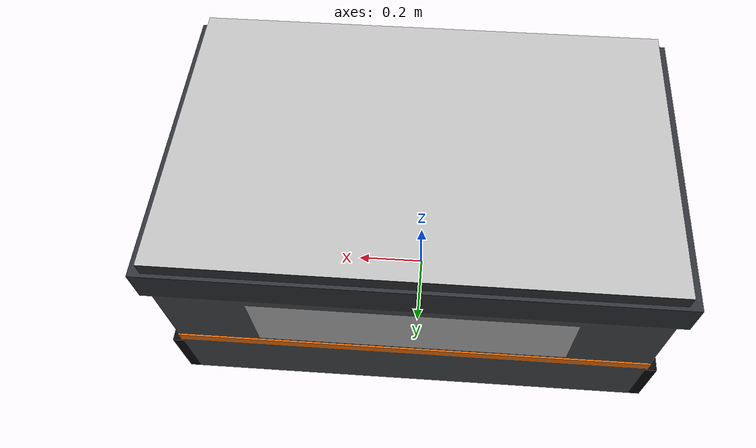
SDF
<?xml version="1.0"?>
<sdf version="1.6">
    <model name="transport_robot">
      <pose>0 0 0 0 0 0</pose>
      <link name="base_link">
        <inertial><mass>180</mass><inertia><ixx>15</ixx>
          <iyy>30.75</iyy><izz>34.95</izz>
          <ixy>0</ixy><ixz>0</ixz><iyz>0</iyz></inertia></inertial>
        <collision name="body">
          <pose>0 0 0.25 0 0 0</pose>
          <geometry><box><size>1.3 0.8 0.5</size></box></geometry>
          <surface><friction><ode><mu>0</mu><mu2>0</mu2></ode></friction></surface>
        </collision>
        <collision name="deck">
          <pose>0 0 0.57 0 0 0</pose>
          <geometry><box><size>1.3 0.8 0.14</size></box></geometry>
        </collision>
        <visual name="visual">
          <cast_shadows>false</cast_shadows>
          <geometry><mesh><uri>model://transport_robot/meshes/base.dae</uri></mesh></geometry>
        </visual>
        <sensor name="laser" type="gpu_ray">
          <pose>0.67 0 0.18 0 0 0</pose>
          <update_rate>10</update_rate>
          <ray>
            <scan><horizontal><samples>540</samples><resolution>1</resolution>
              <min_angle>-2.356</min_angle><max_angle>2.356</max_angle></horizontal></scan>
            <range><min>0.1</min><max>20</max><resolution>0.01</resolution></range>
            <noise><type>gaussian</type><mean>0</mean><stddev>0.01</stddev></noise>
          </ray>
          <plugin name="laser" filename="libgazebo_ros_ray_sensor.so">
            <ros><namespace>/transport_robot</namespace><remapping>~/out:=scan</remapping></ros>
            <output_type>sensor_msgs/LaserScan</output_type>
            <frame_name>transport_robot/laser</frame_name>
          </plugin>
        </sensor>
      </link>
      <plugin name="custom_robot" filename="/workspace/models/transport_robot/plugins/libcustom_robot.so">
        <ros><namespace>/transport_robot</namespace></ros>
        <role>transport</role>
        <max_speed>1.5</max_speed>
        <max_turn_rate>1.5</max_turn_rate>
        <acceleration>0.8</acceleration>
        <deck_length>1.24</deck_length>
        <deck_width>0.78</deck_width>
        <deck_top>0.64</deck_top>
        <roller_speed>0.4</roller_speed>
        <laser_pose>0.67 0 0.18 0 0 0</laser_pose>
      </plugin>
    </model>
</sdf>
